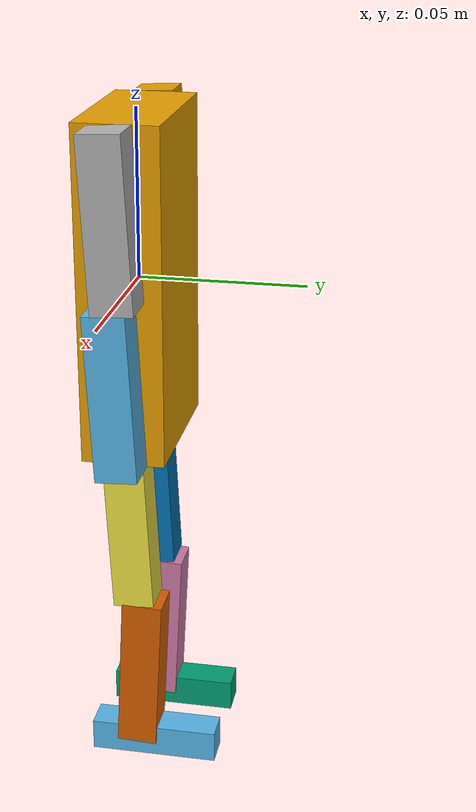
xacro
<?xml version="1.0"?>
<robot xmlns:xacro="http://www.ros.org/wiki/xacro" name="arm">

    <xacro:property name="leg_len" value="0.1" />
    <xacro:property name="body_len" value="0.2" />

    <xacro:macro name="limb" params="name side offset rpy">
        <link name="${side}_${name}">
            <visual>
                <geometry>
                    <box size="${leg_len/8} ${leg_len / 8} ${leg_len/2}"/>
                </geometry>
                <origin xyz="${offset}" rpy="${rpy}"/>
            </visual>
            <collision>
                <geometry>
                    <box size="${leg_len/8} ${leg_len / 8} ${leg_len/2}"/>
                </geometry>
                <origin xyz="${offset}"/>
            </collision>
        </link>
    </xacro:macro>

    <xacro:macro name="connection" params="name limb1 limb2 lo hi offset">
        <joint name="${name}" type="revolute">
            <parent link="${limb1}"/>
            <child link="${limb2}"/>
            <limit lower="${lo}" upper="${hi}" effort="0.0" velocity="0.0"/>
            <origin xyz="${offset}"/>
        </joint>
    </xacro:macro>

    <link name="base_link">
        <visual>
            <geometry>
                <box size=".025 .05 ${body_len/2}"/>
            </geometry>
            <origin rpy="0 0 ${3.14/2}"/>
        </visual>
        <collision>
            <geometry>
                <box size=".025 .05 ${body_len/2}"/>
            </geometry>
            <origin rpy="0 0 ${3.14/2}"/>
        </collision>
    </link>

    <link name="right_foot">
        <visual>
            <geometry>
                <box size=".01 .04 .01"/>
            </geometry>
        </visual>
        <collision>
            <geometry>
                <box size=".01 .04 .01"/>
            </geometry>
        </collision>
    </link>

    <link name="left_foot">
        <visual>
            <geometry>
                <box size=".01 .04 .01"/>
            </geometry>
        </visual>
        <collision>
            <geometry>
                <box size=".01 .04 .01"/>
            </geometry>
        </collision>
    </link>

    <!--offset=".015 .005 -.075"-->
    <xacro:limb name="thigh" side="right" offset="0 0 -.025" rpy=".05 0 0"/>

    <xacro:limb name="thigh" side="left" offset="0 0 -.025" rpy=".05 0 0"/>

    <xacro:connection name="right_hip" limb1="base_link" limb2="right_thigh" lo="-1.2" hi="1.2" offset=".015 0 -.05"/>

    <xacro:connection name="left_hip" limb1="base_link" limb2="left_thigh" lo="-1.2" hi="1.2" offset="-.015 0 -.05"/>

    <xacro:limb name="calf" side="right" offset="0 0 -.025" rpy="-.05 0 0"/>

    <xacro:limb name="calf" side="left" offset="0 0 -.025" rpy="-.05 0 0"/>

    <xacro:connection name="right_knee" limb1="right_thigh" limb2="right_calf" lo="-1.2" hi="0" offset="0 .0025 -.05"/>

    <xacro:connection name="left_knee" limb1="left_thigh" limb2="left_calf" lo="-1.2" hi="0" offset="0 .0025 -.05"/>

    <xacro:connection name="right_ankle" limb1="right_calf" limb2="right_foot" lo="-1.2" hi=".5" offset="0 .004 -.050"/>

    <xacro:connection name="left_ankle" limb1="left_calf" limb2="left_foot" lo="-1.2" hi=".5" offset="0 .004 -.050"/>

    <xacro:limb name="bicep" side="right" offset="0 0 -.025" rpy=".05 0 0"/>

    <xacro:limb name="bicep" side="left" offset="0 0 -.025" rpy=".05 0 0"/>

    <xacro:connection name="right_shoulder" limb1="base_link" limb2="right_bicep" lo="-1.2" hi="1.2" offset="0.032 .0 .05"/>

    <xacro:connection name="left_shoulder" limb1="base_link" limb2="left_bicep" lo="-1.2" hi="1.2" offset="-0.032 .0 .05"/>

    <xacro:limb name="forearm" side="right" offset="0 0 -.025" rpy=".05 0 0"/>

    <xacro:limb name="forearm" side="left" offset="0 0 -.025" rpy=".05 0 0"/>

    <xacro:connection name="right_elbow" limb1="right_bicep" limb2="right_forearm" lo="0" hi="1.2" offset="0.0 .0 -.05"/>

    <xacro:connection name="left_elbow" limb1="left_bicep" limb2="left_forearm" lo="0" hi="1.2" offset="0.0 .0 -.05"/>

</robot>
